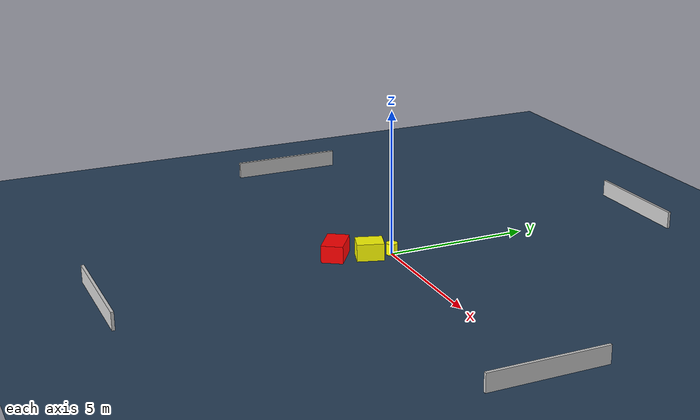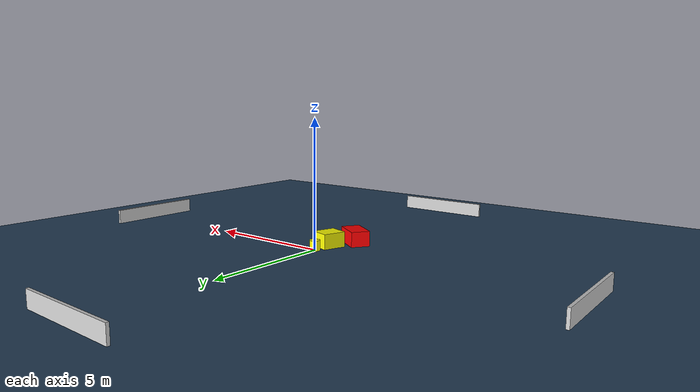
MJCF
<?xml version="1.0" ?>
<mujoco model="generated_environment">
  <option timestep="0.01" integrator="RK4" cone="elliptic"/>
  <default>
    <geom density="1"/>
  </default>
  <asset>
    <texture builtin="gradient" height="3072" name="skybox" rgb1="0.3 0.5 0.7" rgb2="0 0 0" type="skybox" width="512"/>
    <texture builtin="checker" height="300" name="groundplane" rgb1="0.2 0.3 0.4" rgb2="0.1 0.2 0.3" type="2d" width="300"/>
    <material name="groundplane" reflectance="0.2" texrepeat="5 5" texture="groundplane"/>
  </asset>
  <worldbody>
    <light dir="0 0 -1" directional="true" pos="0 0 1.5"/>
    <geom condim="3" friction="0.5 0.005 0.001" material="groundplane" name="floor" pos="0 0 0" size="0 0 0.05" type="plane"/>
    <body name="walls">
      <geom name="wall_1" condim="4" pos="-10.0 0.0 0.3" rgba="0.800000011920929 0.800000011920929 0.800000011920929 1.0" size="0.05 2.0 0.3" type="box"/>
      <geom name="wall_2" condim="4" pos="10.0 0.0 0.3" rgba="0.800000011920929 0.800000011920929 0.800000011920929 1.0" size="0.05 2.0 0.3" type="box"/>
      <geom name="wall_3" condim="4" pos="0.0 -10.0 0.3" rgba="0.800000011920929 0.800000011920929 0.800000011920929 1.0" size="2.0 0.05 0.3" type="box"/>
      <geom name="wall_4" condim="4" pos="0.0 10.0 0.3" rgba="0.800000011920929 0.800000011920929 0.800000011920929 1.0" size="2.0 0.05 0.3" type="box"/>
    </body>
    <body name="robot">
      <joint name="joint_x" type="slide" pos="0 0 0" axis="1 0 0"/>
      <joint name="joint_y" type="slide" pos="0 0 0" axis="0 1 0"/>
      <geom name="robot" type="cylinder" pos="0.0 0.0 0.2" size="0.2 0.2 0.0" mass="5.0" friction="1.0 0.005 0.0001" condim="4" rgba="1.0 1.0 0.0 1.0"/>
    </body>
    <body name="obstacle_1_movable">
      <geom name="obstacle_1_movable" condim="4" pos="-0.04911059877451104 -0.8093206167974012 0.3" euler="0 0 162.3825341048522" friction="0.0 0.005 0.001" rgba="1.0 1.0 0.0 1.0" size="0.3800318539066374 0.46638188110702256 0.3" type="box" mass="0.1"/>
      <joint type="free"/>
    </body>
    <body name="obstacle_2_static">
      <geom name="obstacle_2_static" condim="4" pos="-0.5543432748063841 -1.8457540276219317 0.3" euler="0 0 56.14966212519557" friction="0.0 0.005 0.001" rgba="1.0 0.0 0.0 1.0" size="0.3765192550634908 0.5936980893962103 0.3" type="box"/>
    </body>
  </worldbody>
  <actuator>
    <motor name="actuator_x" joint="joint_x" gear="1" ctrlrange="-1 1"/>
    <motor name="actuator_y" joint="joint_y" gear="1" ctrlrange="-1 1"/>
  </actuator>
</mujoco>
